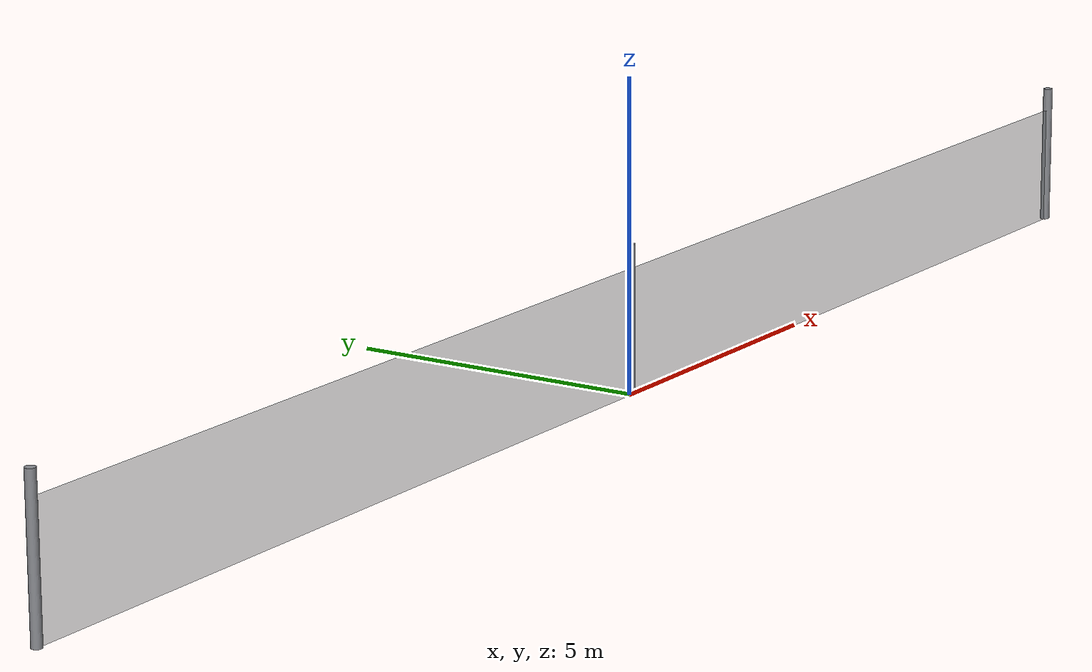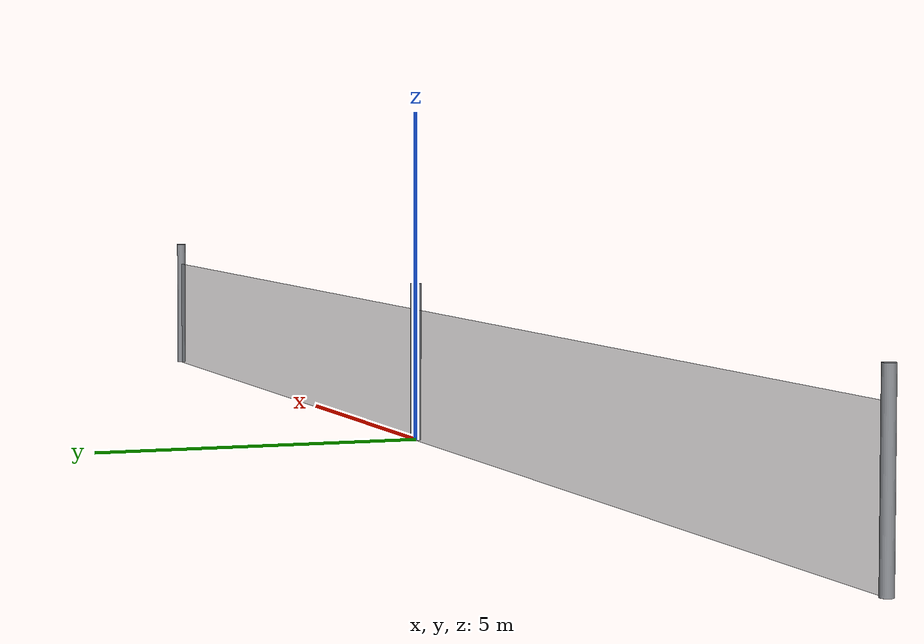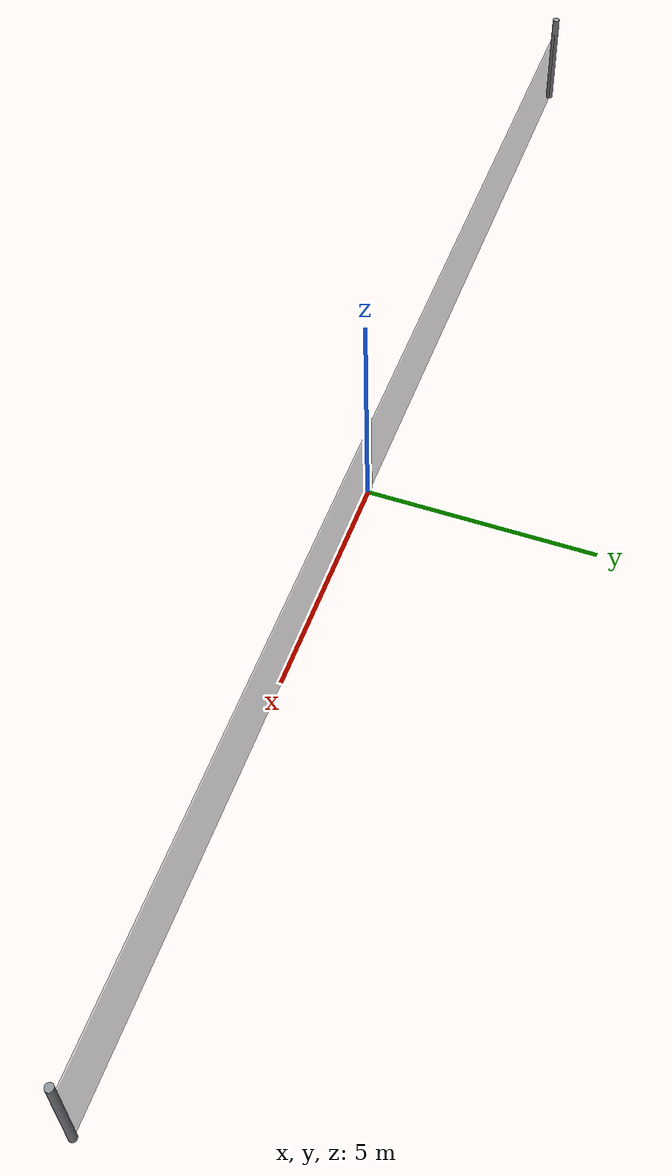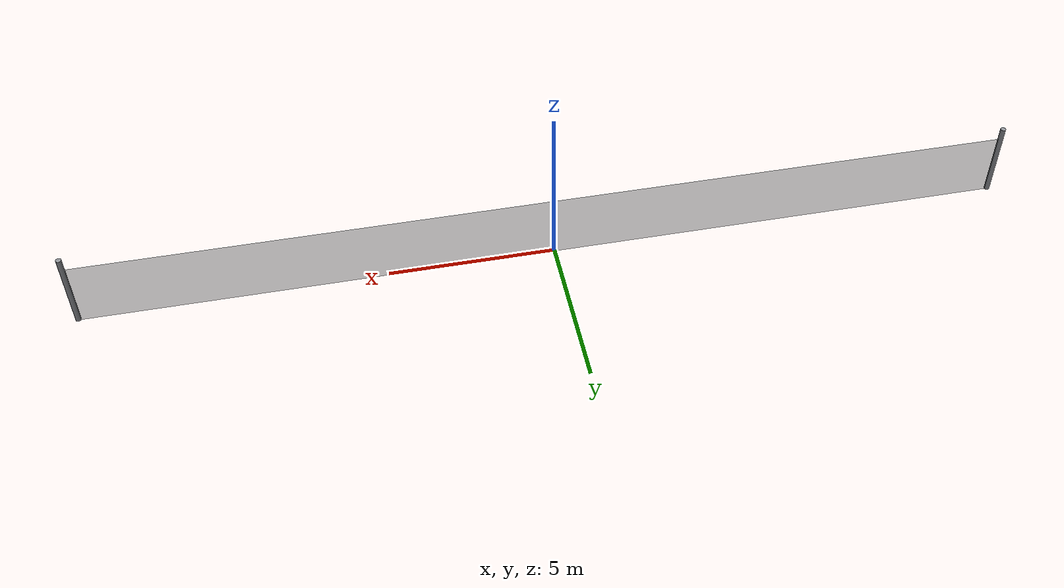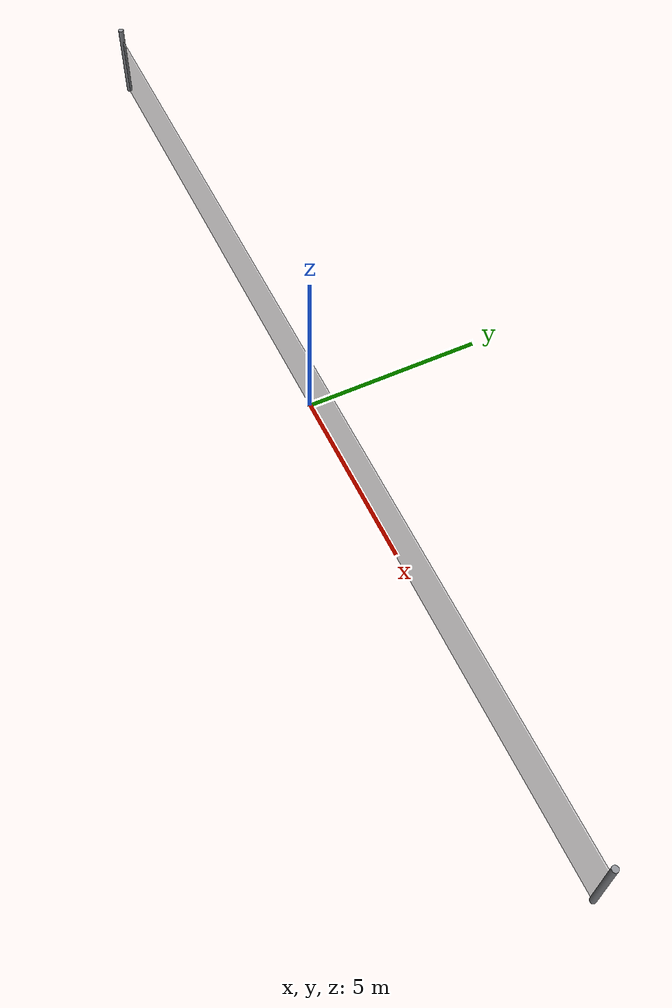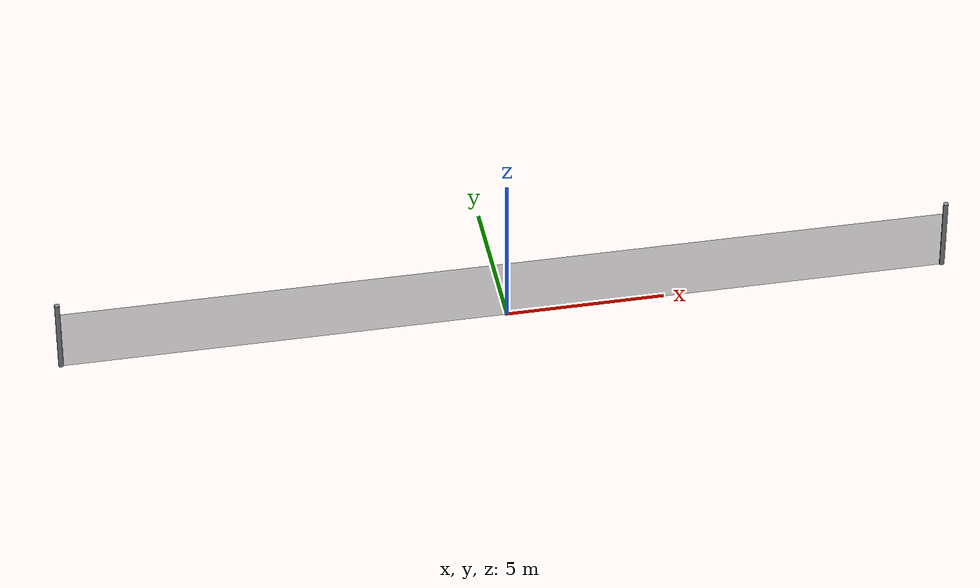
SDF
<?xml version="1.0" ?>
<sdf version="1.9">
  <model name="fence_segment">
    <static>true</static>
    <link name="fence_link">
      <collision name="panel_collision">
        <pose>0 0 1.0 0 0 0</pose>
        <geometry>
          <box>
            <size>28 0.08 2.0</size>
          </box>
        </geometry>
      </collision>

      <visual name="mesh_panel">
        <pose>0 0 1.0 0 0 0</pose>
        <geometry>
          <box>
            <size>28 0.03 2.0</size>
          </box>
        </geometry>
        <material>
          <ambient>0.48 0.50 0.52 0.45</ambient>
          <diffuse>0.58 0.60 0.62 0.45</diffuse>
        </material>
        <transparency>0.45</transparency>
      </visual>

      <visual name="post_left">
        <pose>-14 0 1.2 0 0 0</pose>
        <geometry>
          <cylinder>
            <radius>0.08</radius>
            <length>2.4</length>
          </cylinder>
        </geometry>
        <material>
          <ambient>0.44 0.45 0.47 1</ambient>
          <diffuse>0.54 0.55 0.57 1</diffuse>
        </material>
      </visual>

      <visual name="post_center">
        <pose>0 0 1.2 0 0 0</pose>
        <geometry>
          <cylinder>
            <radius>0.08</radius>
            <length>2.4</length>
          </cylinder>
        </geometry>
        <material>
          <ambient>0.44 0.45 0.47 1</ambient>
          <diffuse>0.54 0.55 0.57 1</diffuse>
        </material>
      </visual>

      <visual name="post_right">
        <pose>14 0 1.2 0 0 0</pose>
        <geometry>
          <cylinder>
            <radius>0.08</radius>
            <length>2.4</length>
          </cylinder>
        </geometry>
        <material>
          <ambient>0.44 0.45 0.47 1</ambient>
          <diffuse>0.54 0.55 0.57 1</diffuse>
        </material>
      </visual>
    </link>
  </model>
</sdf>
